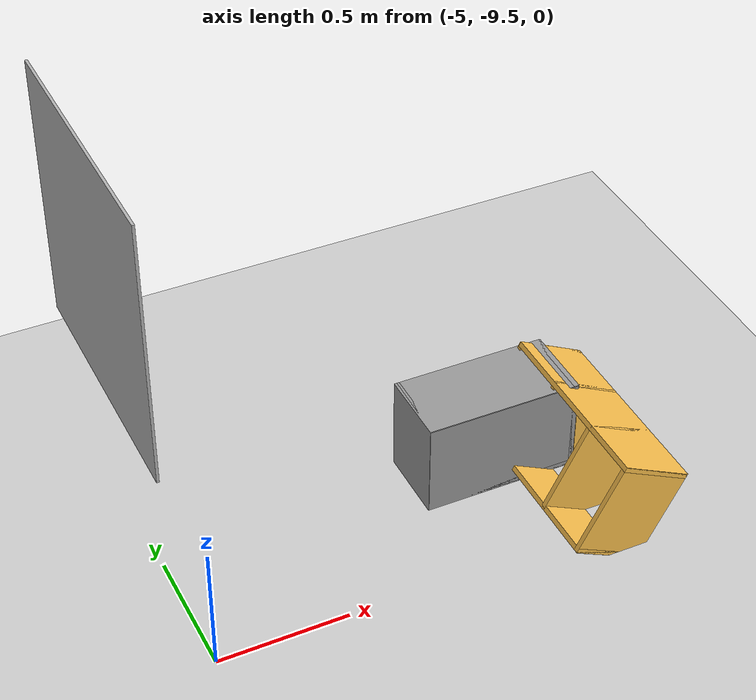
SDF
<sdf version="1.6">
 <world name="default">
  <model name="ground_plane">
   <static>1</static>
   <link name="link">
    <collision name="collision">
     <geometry><plane><normal>0 0 1</normal><size>100 100</size></plane></geometry>
     <surface><friction><ode><mu>100</mu><mu2>50</mu2></ode></friction></surface>
    </collision>
    <visual name="visual">
     <cast_shadows>0</cast_shadows>
     <geometry><plane><normal>0 0 1</normal><size>100 100</size></plane></geometry>
     <material>
      <script><uri>file://media/materials/scripts/gazebo.material</uri><name>Gazebo/Grey</name></script>
     </material>
    </visual>
   </link>
  </model>
  <model name="Wall_Cabinet_15x30_2">
   <pose>-3.54335 -9.24759 0 0 0.473353 0</pose>
   <link name="Wall_0">
    <pose>0 0.374 0.192 0 -0 0</pose>
    <inertial>
     <mass>0.9882</mass>
     <inertia><ixx>0.0072</ixx><iyy>0.0194</iyy><izz>0.0122</izz><ixy>0</ixy><ixz>0</ixz><iyz>0</iyz></inertia>
    </inertial>
    <collision name="Wall_0_Collision"><geometry><box><size>0.296 0.02 0.384</size></box></geometry></collision>
    <visual name="Wall_0_Visual">
     <geometry><box><size>0.296 0.02 0.384</size></box></geometry>
     <material>
      <script><uri>file://media/materials/scripts/gazebo.material</uri><name>Gazebo/Grey</name></script>
      <ambient>1 0.764706 0.305882 1</ambient>
     </material>
    </visual>
   </link>
   <joint name="0_2" type="fixed">
    <pose>0 0 0.192 0 -0 0</pose>
    <parent>Wall_2</parent>
    <child>Wall_0</child>
    <axis>
     <xyz>0 0 1</xyz>
     <use_parent_model_frame>0</use_parent_model_frame>
     <limit><lower>-1e+16</lower><upper>1e+16</upper></limit>
    </axis>
   </joint>
   <joint name="0_4" type="fixed">
    <pose>0 0 -0.192 0 -0 0</pose>
    <parent>Wall_4</parent>
    <child>Wall_0</child>
    <axis>
     <xyz>0 0 1</xyz>
     <use_parent_model_frame>0</use_parent_model_frame>
     <limit><lower>-1e+16</lower><upper>1e+16</upper></limit>
    </axis>
   </joint>
   <joint name="0_15" type="fixed">
    <pose>0.148 0 0 0 -0 0</pose>
    <parent>Wall_15</parent>
    <child>Wall_0</child>
    <axis>
     <xyz>1 0 0</xyz>
     <use_parent_model_frame>0</use_parent_model_frame>
     <limit><lower>-1e+16</lower><upper>1e+16</upper></limit>
    </axis>
   </joint>
   <link name="Wall_11">
    <pose>0 -0.132768 0.192 0 -0 0</pose>
    <inertial>
     <mass>0.9882</mass>
     <inertia><ixx>0.0072</ixx><iyy>0.0194</iyy><izz>0.0122</izz><ixy>0</ixy><ixz>0</ixz><iyz>0</iyz></inertia>
    </inertial>
    <collision name="Wall_11_Collision"><geometry><box><size>0.296 0.02 0.384</size></box></geometry></collision>
    <visual name="Wall_11_Visual">
     <geometry><box><size>0.296 0.02 0.384</size></box></geometry>
     <material>
      <script><uri>file://media/materials/scripts/gazebo.material</uri><name>Gazebo/Grey</name></script>
      <ambient>1 0.764706 0.305882 1</ambient>
     </material>
    </visual>
   </link>
   <joint name="11_2" type="fixed">
    <pose>0 0 0.192 0 -0 0</pose>
    <parent>Wall_2</parent>
    <child>Wall_11</child>
    <axis>
     <xyz>0 0 1</xyz>
     <use_parent_model_frame>0</use_parent_model_frame>
     <limit><lower>-1e+16</lower><upper>1e+16</upper></limit>
    </axis>
   </joint>
   <joint name="11_4" type="fixed">
    <pose>0 0 -0.192 0 -0 0</pose>
    <parent>Wall_4</parent>
    <child>Wall_11</child>
    <axis>
     <xyz>0 0 1</xyz>
     <use_parent_model_frame>0</use_parent_model_frame>
     <limit><lower>-1e+16</lower><upper>1e+16</upper></limit>
    </axis>
   </joint>
   <joint name="11_15" type="fixed">
    <pose>0.148 0 0 0 -0 0</pose>
    <parent>Wall_15</parent>
    <child>Wall_11</child>
    <axis>
     <xyz>1 0 0</xyz>
     <use_parent_model_frame>0</use_parent_model_frame>
     <limit><lower>-1e+16</lower><upper>1e+16</upper></limit>
    </axis>
   </joint>
   <link name="Wall_15">
    <pose>0.138 0 0.19 0 -0 0</pose>
    <inertial>
     <mass>2.5241</mass>
     <inertia><ixx>0.0305</ixx><iyy>0.1229</iyy><izz>0.1532</izz><ixy>0</ixy><ixz>0</ixz><iyz>0</iyz></inertia>
    </inertial>
    <collision name="Wall_15_Collision"><geometry><box><size>0.02 0.764 0.38</size></box></geometry></collision>
    <visual name="Wall_15_Visual">
     <geometry><box><size>0.02 0.764 0.38</size></box></geometry>
     <material>
      <script><uri>file://media/materials/scripts/gazebo.material</uri><name>Gazebo/Grey</name></script>
      <ambient>1 0.764706 0.305882 1</ambient>
     </material>
    </visual>
   </link>
   <joint name="15_2" type="fixed">
    <pose>0 0 0.19 0 -0 0</pose>
    <parent>Wall_2</parent>
    <child>Wall_15</child>
    <axis>
     <xyz>0 0 1</xyz>
     <use_parent_model_frame>0</use_parent_model_frame>
     <limit><lower>-1e+16</lower><upper>1e+16</upper></limit>
    </axis>
   </joint>
   <joint name="15_4" type="fixed">
    <pose>0 0 -0.19 0 -0 0</pose>
    <parent>Wall_4</parent>
    <child>Wall_15</child>
    <axis>
     <xyz>0 0 1</xyz>
     <use_parent_model_frame>0</use_parent_model_frame>
     <limit><lower>-1e+16</lower><upper>1e+16</upper></limit>
    </axis>
   </joint>
   <link name="Wall_2">
    <pose>0 0 0.374 0 -0 0</pose>
    <inertial>
     <mass>1.9765</mass>
     <inertia><ixx>0.0145</ixx><iyy>0.1116</iyy><izz>0.0972</izz><ixy>0</ixy><ixz>0</ixz><iyz>0</iyz></inertia>
    </inertial>
    <collision name="Wall_2_Collision"><geometry><box><size>0.296 0.768 0.02</size></box></geometry></collision>
    <visual name="Wall_2_Visual">
     <geometry><box><size>0.296 0.768 0.02</size></box></geometry>
     <material>
      <script><uri>file://media/materials/scripts/gazebo.material</uri><name>Gazebo/Grey</name></script>
      <ambient>1 0.764706 0.305882 1</ambient>
     </material>
    </visual>
   </link>
   <link name="Wall_4">
    <pose>0 0 0.01 0 -0 0</pose>
    <inertial>
     <mass>1.9765</mass>
     <inertia><ixx>0.0145</ixx><iyy>0.1116</iyy><izz>0.0972</izz><ixy>0</ixy><ixz>0</ixz><iyz>0</iyz></inertia>
    </inertial>
    <collision name="Wall_4_Collision"><geometry><box><size>0.296 0.768 0.02</size></box></geometry></collision>
    <visual name="Wall_4_Visual">
     <geometry><box><size>0.296 0.768 0.02</size></box></geometry>
     <material>
      <script><uri>file://media/materials/scripts/gazebo.material</uri><name>Gazebo/Grey</name></script>
      <ambient>1 0.764706 0.305882 1</ambient>
     </material>
    </visual>
    <pose>-0.181124 0 0 0 0 -1.5708</pose>
   </link>
   <link name="Wall_6">
    <pose>0 -0.374 0.192 0 -0 0</pose>
    <inertial>
     <mass>0.9882</mass>
     <inertia><ixx>0.0072</ixx><iyy>0.0194</iyy><izz>0.0122</izz><ixy>0</ixy><ixz>0</ixz><iyz>0</iyz></inertia>
    </inertial>
    <collision name="Wall_6_Collision"><geometry><box><size>0.296 0.02 0.384</size></box></geometry></collision>
    <visual name="Wall_6_Visual">
     <geometry><box><size>0.296 0.02 0.384</size></box></geometry>
     <material>
      <script><uri>file://media/materials/scripts/gazebo.material</uri><name>Gazebo/Grey</name></script>
      <ambient>1 0.764706 0.305882 1</ambient>
     </material>
    </visual>
   </link>
   <joint name="6_2" type="fixed">
    <pose>0 0 0.192 0 -0 0</pose>
    <parent>Wall_2</parent>
    <child>Wall_6</child>
    <axis>
     <xyz>0 0 1</xyz>
     <use_parent_model_frame>0</use_parent_model_frame>
     <limit><lower>-1e+16</lower><upper>1e+16</upper></limit>
    </axis>
   </joint>
   <joint name="6_4" type="fixed">
    <pose>0 0 -0.192 0 -0 0</pose>
    <parent>Wall_4</parent>
    <child>Wall_6</child>
    <axis>
     <xyz>0 0 1</xyz>
     <use_parent_model_frame>0</use_parent_model_frame>
     <limit><lower>-1e+16</lower><upper>1e+16</upper></limit>
    </axis>
   </joint>
   <joint name="6_15" type="fixed">
    <pose>0.148 0 0 0 -0 0</pose>
    <parent>Wall_15</parent>
    <child>Wall_6</child>
    <axis>
     <xyz>1 0 0</xyz>
     <use_parent_model_frame>0</use_parent_model_frame>
     <limit><lower>-1e+16</lower><upper>1e+16</upper></limit>
    </axis>
   </joint>
   <link name="Wall_8">
    <pose>0 0.120833 0.192 0 -0 0</pose>
    <inertial>
     <mass>0.9882</mass>
     <inertia><ixx>0.0072</ixx><iyy>0.0194</iyy><izz>0.0122</izz><ixy>0</ixy><ixz>0</ixz><iyz>0</iyz></inertia>
    </inertial>
    <collision name="Wall_8_Collision"><geometry><box><size>0.296 0.02 0.384</size></box></geometry></collision>
    <visual name="Wall_8_Visual">
     <geometry><box><size>0.296 0.02 0.384</size></box></geometry>
     <material>
      <script><uri>file://media/materials/scripts/gazebo.material</uri><name>Gazebo/Grey</name></script>
      <ambient>1 0.764706 0.305882 1</ambient>
     </material>
    </visual>
   </link>
   <joint name="8_2" type="fixed">
    <pose>0 0 0.192 0 -0 0</pose>
    <parent>Wall_2</parent>
    <child>Wall_8</child>
    <axis>
     <xyz>0 0 1</xyz>
     <use_parent_model_frame>0</use_parent_model_frame>
     <limit><lower>-1e+16</lower><upper>1e+16</upper></limit>
    </axis>
   </joint>
   <joint name="8_4" type="fixed">
    <pose>0 0 -0.192 0 -0 0</pose>
    <parent>Wall_4</parent>
    <child>Wall_8</child>
    <axis>
     <xyz>0 0 1</xyz>
     <use_parent_model_frame>0</use_parent_model_frame>
     <limit><lower>-1e+16</lower><upper>1e+16</upper></limit>
    </axis>
   </joint>
   <joint name="8_15" type="fixed">
    <pose>0.148 0 0 0 -0 0</pose>
    <parent>Wall_15</parent>
    <child>Wall_8</child>
    <axis>
     <xyz>1 0 0</xyz>
     <use_parent_model_frame>0</use_parent_model_frame>
     <limit><lower>-1e+16</lower><upper>1e+16</upper></limit>
    </axis>
   </joint>
   <static>1</static>
  </model>
  <model name="Wall_Cabinet_24x15W">
   <link name="Wall_41">
    <pose>0 0 0.01 0 -0 0</pose>
    <inertial>
     <mass>1.4983</mass>
     <inertia><ixx>0.011</ixx><iyy>0.0571</iyy><izz>0.0462</izz><ixy>0</ixy><ixz>0</ixz><iyz>0</iyz></inertia>
    </inertial>
    <collision name="Wall_41_Collision"><geometry><box><size>0.608 0.296 0.02</size></box></geometry></collision>
    <visual name="Wall_41_Visual">
     <geometry><box><size>0.608 0.296 0.02</size></box></geometry>
     <material>
      <script><uri>file://media/materials/scripts/gazebo.material</uri><name>Gazebo/Grey</name></script>
      <ambient>1 1 1 1</ambient>
     </material>
    </visual>
    <pose>0.000184 0.181953 0 0 -0 0</pose>
   </link>
   <joint name="41_43" type="fixed">
    <pose>-0.304 0 0 0 -0 0</pose>
    <parent>Wall_43</parent>
    <child>Wall_41</child>
    <axis>
     <xyz>0 0 1</xyz>
     <use_parent_model_frame>0</use_parent_model_frame>
     <limit><lower>-1e+16</lower><upper>1e+16</upper></limit>
    </axis>
   </joint>
   <joint name="41_45" type="fixed">
    <pose>0.304 0 0 0 -0 0</pose>
    <parent>Wall_45</parent>
    <child>Wall_41</child>
    <axis>
     <xyz>0 0 1</xyz>
     <use_parent_model_frame>0</use_parent_model_frame>
     <limit><lower>-1e+16</lower><upper>1e+16</upper></limit>
    </axis>
   </joint>
   <joint name="41_49" type="fixed">
    <pose>0 -0.148 0 0 -0 0</pose>
    <parent>Wall_49</parent>
    <child>Wall_41</child>
    <axis>
     <xyz>0 0 1</xyz>
     <use_parent_model_frame>0</use_parent_model_frame>
     <limit><lower>-1e+16</lower><upper>1e+16</upper></limit>
    </axis>
   </joint>
   <link name="Wall_43">
    <pose>-0.294 0 0.192 0 -0 0</pose>
    <inertial>
     <mass>0.9463</mass>
     <inertia><ixx>0.0069</ixx><iyy>0.0185</iyy><izz>0.0117</izz><ixy>0</ixy><ixz>0</ixz><iyz>0</iyz></inertia>
    </inertial>
    <collision name="Wall_43_Collision"><geometry><box><size>0.02 0.296 0.384</size></box></geometry></collision>
    <visual name="Wall_43_Visual">
     <geometry><box><size>0.02 0.296 0.384</size></box></geometry>
     <material>
      <script><uri>file://media/materials/scripts/gazebo.material</uri><name>Gazebo/Grey</name></script>
      <ambient>1 1 1 1</ambient>
     </material>
    </visual>
   </link>
   <link name="Wall_45">
    <pose>0.294 0 0.192 0 -0 0</pose>
    <inertial>
     <mass>0.9463</mass>
     <inertia><ixx>0.0069</ixx><iyy>0.0185</iyy><izz>0.0117</izz><ixy>0</ixy><ixz>0</ixz><iyz>0</iyz></inertia>
    </inertial>
    <collision name="Wall_45_Collision"><geometry><box><size>0.02 0.296 0.384</size></box></geometry></collision>
    <visual name="Wall_45_Visual">
     <geometry><box><size>0.02 0.296 0.384</size></box></geometry>
     <material>
      <script><uri>file://media/materials/scripts/gazebo.material</uri><name>Gazebo/Grey</name></script>
      <ambient>1 1 1 1</ambient>
     </material>
    </visual>
   </link>
   <link name="Wall_47">
    <pose>0 0 0.374 0 -0 0</pose>
    <inertial>
     <mass>1.4983</mass>
     <inertia><ixx>0.011</ixx><iyy>0.0571</iyy><izz>0.0462</izz><ixy>0</ixy><ixz>0</ixz><iyz>0</iyz></inertia>
    </inertial>
    <collision name="Wall_47_Collision"><geometry><box><size>0.608 0.296 0.02</size></box></geometry></collision>
    <visual name="Wall_47_Visual">
     <geometry><box><size>0.608 0.296 0.02</size></box></geometry>
     <material>
      <script><uri>file://media/materials/scripts/gazebo.material</uri><name>Gazebo/Grey</name></script>
      <ambient>1 1 1 1</ambient>
     </material>
    </visual>
   </link>
   <joint name="47_43" type="fixed">
    <pose>-0.304 0 0 0 -0 0</pose>
    <parent>Wall_43</parent>
    <child>Wall_47</child>
    <axis>
     <xyz>0 0 1</xyz>
     <use_parent_model_frame>0</use_parent_model_frame>
     <limit><lower>-1e+16</lower><upper>1e+16</upper></limit>
    </axis>
   </joint>
   <joint name="47_45" type="fixed">
    <pose>0.304 0 0 0 -0 0</pose>
    <parent>Wall_45</parent>
    <child>Wall_47</child>
    <axis>
     <xyz>0 0 1</xyz>
     <use_parent_model_frame>0</use_parent_model_frame>
     <limit><lower>-1e+16</lower><upper>1e+16</upper></limit>
    </axis>
   </joint>
   <joint name="47_49" type="fixed">
    <pose>0 -0.148 0 0 -0 0</pose>
    <parent>Wall_49</parent>
    <child>Wall_47</child>
    <axis>
     <xyz>0 0 1</xyz>
     <use_parent_model_frame>0</use_parent_model_frame>
     <limit><lower>-1e+16</lower><upper>1e+16</upper></limit>
    </axis>
   </joint>
   <link name="Wall_49">
    <pose>0 -0.138 0.19 0 -0 0</pose>
    <inertial>
     <mass>1.9108</mass>
     <inertia><ixx>0.0231</ixx><iyy>0.0582</iyy><izz>0.0811</izz><ixy>0</ixy><ixz>0</ixz><iyz>0</iyz></inertia>
    </inertial>
    <collision name="Wall_49_Collision"><geometry><box><size>0.604 0.02 0.38</size></box></geometry></collision>
    <visual name="Wall_49_Visual">
     <geometry><box><size>0.604 0.02 0.38</size></box></geometry>
     <material>
      <script><uri>file://media/materials/scripts/gazebo.material</uri><name>Gazebo/Grey</name></script>
      <ambient>1 1 1 1</ambient>
     </material>
    </visual>
   </link>
   <joint name="49_43" type="fixed">
    <pose>-0.302 0 0 0 -0 0</pose>
    <parent>Wall_41</parent>
    <child>Wall_49</child>
    <axis>
     <xyz>0 1 0</xyz>
     <use_parent_model_frame>0</use_parent_model_frame>
     <limit><lower>-1e+16</lower><upper>1e+16</upper></limit>
    </axis>
   </joint>
   <joint name="49_45" type="fixed">
    <pose>0.302 0 0 0 -0 0</pose>
    <parent>Wall_45</parent>
    <child>Wall_49</child>
    <axis>
     <xyz>0 1 0</xyz>
     <use_parent_model_frame>0</use_parent_model_frame>
     <limit><lower>-1e+16</lower><upper>1e+16</upper></limit>
    </axis>
   </joint>
   <static>1</static>
   <pose>-3.71654 -9.00302 0 0 -0 0</pose>
  </model>
  <model name="electric_plug_1_N">
   <link name="link_0">
    <pose>4e-06 0 0 0 -0 0</pose>
    <inertial>
     <mass>1</mass>
     <inertia>
      <ixx>0.166667</ixx>
      <ixy>0</ixy>
      <ixz>0</ixz>
      <iyy>0.166667</iyy>
      <iyz>0</iyz>
      <izz>0.166667</izz>
     </inertia>
    </inertial>
    <visual name="visual">
     <geometry><box><size>0.01 1 1</size></box></geometry>
     <material>
      <lighting>1</lighting>
      <script>
       <uri>model://electric_plug_1_N/materials/scripts</uri>
       <uri>model://electric_plug_1_N/materials/textures</uri>
       <name>Electric/Plug1N</name>
      </script>
      <ambient>0.3 0.3 0.3 1</ambient>
      <diffuse>0.7 0.7 0.7 1</diffuse>
      <specular>0.01 0.01 0.01 1</specular>
      <emissive>1 1 1 1</emissive>
     </material>
     <cast_shadows>0</cast_shadows>
    </visual>
    <collision name="collision">
     <geometry><box><size>0.01 1 1</size></box></geometry>
     <surface>
      <friction>
       <ode><mu>1</mu><mu2>1</mu2><fdir1>0 0 0</fdir1><slip1>0</slip1><slip2>0</slip2></ode>
       <torsional>
        <coefficient>1</coefficient>
        <patch_radius>0</patch_radius>
        <surface_radius>0</surface_radius>
        <use_patch_radius>1</use_patch_radius>
        <ode><slip>0</slip></ode>
       </torsional>
      </friction>
      <bounce><restitution_coefficient>0</restitution_coefficient><threshold>1e+06</threshold></bounce>
      <contact>
       <collide_without_contact>0</collide_without_contact>
       <collide_without_contact_bitmask>1</collide_without_contact_bitmask>
       <collide_bitmask>1</collide_bitmask>
       <ode>
        <soft_cfm>0</soft_cfm>
        <soft_erp>0.2</soft_erp>
        <kp>1e+13</kp>
        <kd>1</kd>
        <max_vel>0.01</max_vel>
        <min_depth>0</min_depth>
       </ode>
       <bullet>
        <split_impulse>1</split_impulse>
        <split_impulse_penetration_threshold>-0.01</split_impulse_penetration_threshold>
        <soft_cfm>0</soft_cfm>
        <soft_erp>0.2</soft_erp>
        <kp>1e+13</kp>
        <kd>1</kd>
       </bullet>
      </contact>
     </surface>
    </collision>
   </link>
   <static>0</static>
   <pose>-5.10297 -8.86947 1.26199 0 -0 4e-06</pose>
  </model>
 </world>
</sdf>
